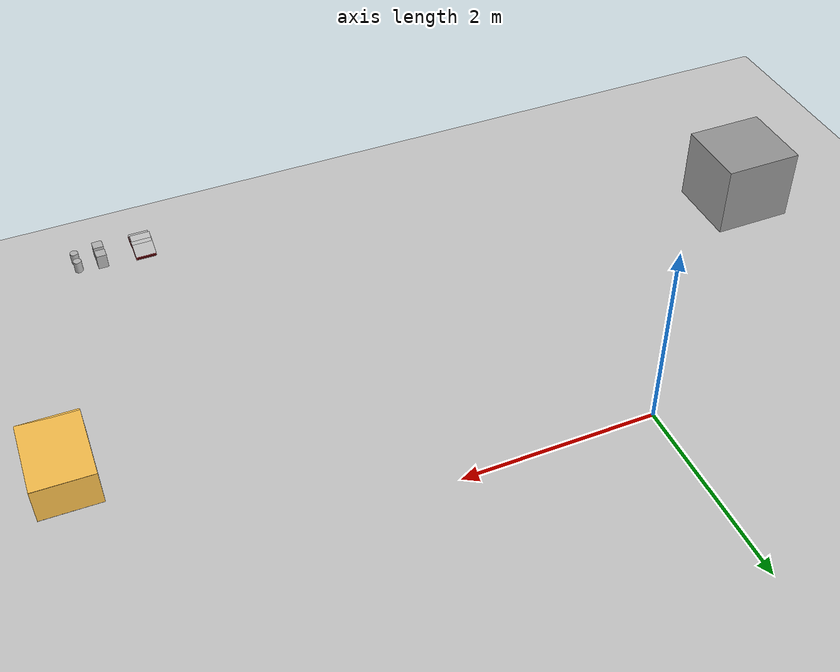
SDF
<sdf version="1.6">
 <world name="default">
  <model name="ground_plane">
   <static>1</static>
   <link name="link">
    <collision name="collision">
     <geometry><plane><normal>0 0 1</normal><size>100 100</size></plane></geometry>
     <surface><friction><ode><mu>100</mu><mu2>50</mu2></ode></friction></surface>
    </collision>
    <visual name="visual">
     <cast_shadows>0</cast_shadows>
     <geometry><plane><normal>0 0 1</normal><size>100 100</size></plane></geometry>
     <material>
      <script><uri>file://media/materials/scripts/gazebo.material</uri><name>Gazebo/Grey</name></script>
     </material>
    </visual>
   </link>
  </model>
  <model name="Fridge_Cabinet_33x15_clone_0">
   <link name="Wall_17">
    <pose>0 0 0.01 0 -0 0</pose>
    <inertial>
     <mass>4.8627</mass>
     <inertia><ixx>0.146</ixx><iyy>0.4318</iyy><izz>0.2861</izz><ixy>0</ixy><ixz>0</ixz><iyz>0</iyz></inertia>
    </inertial>
    <collision name="Wall_17_Collision"><geometry><box><size>0.84 0.6 0.02</size></box></geometry></collision>
    <visual name="Wall_17_Visual">
     <geometry><box><size>0.84 0.6 0.02</size></box></geometry>
     <material>
      <script><uri>file://media/materials/scripts/gazebo.material</uri><name>Gazebo/Grey</name></script>
      <ambient>1 0.764706 0.305882 1</ambient>
     </material>
    </visual>
   </link>
   <joint name="17_21" type="fixed">
    <pose>0.42 0 0 0 -0 0</pose>
    <parent>Wall_21</parent>
    <child>Wall_17</child>
    <axis>
     <xyz>1 0 0</xyz>
     <use_parent_model_frame>0</use_parent_model_frame>
     <limit><lower>-1e+16</lower><upper>1e+16</upper></limit>
    </axis>
   </joint>
   <joint name="17_19" type="fixed">
    <pose>-0.42 0 0 0 -0 0</pose>
    <parent>Wall_19</parent>
    <child>Wall_17</child>
    <axis>
     <xyz>1 0 0</xyz>
     <use_parent_model_frame>0</use_parent_model_frame>
     <limit><lower>-1e+16</lower><upper>1e+16</upper></limit>
    </axis>
   </joint>
   <joint name="17_25" type="fixed">
    <pose>0 -0.3 0 0 -0 0</pose>
    <parent>Wall_25</parent>
    <child>Wall_17</child>
    <axis>
     <xyz>0 1 0</xyz>
     <use_parent_model_frame>0</use_parent_model_frame>
     <limit><lower>-1e+16</lower><upper>1e+16</upper></limit>
    </axis>
   </joint>
   <link name="Wall_19">
    <pose>-0.41 0 0.192 0 -0 0</pose>
    <inertial>
     <mass>2.223</mass>
     <inertia><ixx>0.0668</ixx><iyy>0.094</iyy><izz>0.0274</izz><ixy>0</ixy><ixz>0</ixz><iyz>0</iyz></inertia>
    </inertial>
    <collision name="Wall_19_Collision"><geometry><box><size>0.02 0.6 0.384</size></box></geometry></collision>
    <visual name="Wall_19_Visual">
     <geometry><box><size>0.02 0.6 0.384</size></box></geometry>
     <material>
      <script><uri>file://media/materials/scripts/gazebo.material</uri><name>Gazebo/Grey</name></script>
      <ambient>1 0.764706 0.305882 1</ambient>
     </material>
    </visual>
   </link>
   <link name="Wall_21">
    <pose>0.41 0 0.192 0 -0 0</pose>
    <inertial>
     <mass>2.223</mass>
     <inertia><ixx>0.0668</ixx><iyy>0.094</iyy><izz>0.0274</izz><ixy>0</ixy><ixz>0</ixz><iyz>0</iyz></inertia>
    </inertial>
    <collision name="Wall_21_Collision"><geometry><box><size>0.02 0.6 0.384</size></box></geometry></collision>
    <visual name="Wall_21_Visual">
     <geometry><box><size>0.02 0.6 0.384</size></box></geometry>
     <material>
      <script><uri>file://media/materials/scripts/gazebo.material</uri><name>Gazebo/Grey</name></script>
      <ambient>1 0.764706 0.305882 1</ambient>
     </material>
    </visual>
   </link>
   <link name="Wall_23">
    <pose>0 0 0.374 0 -0 0</pose>
    <inertial>
     <mass>4.8627</mass>
     <inertia><ixx>0.146</ixx><iyy>0.4318</iyy><izz>0.2861</izz><ixy>0</ixy><ixz>0</ixz><iyz>0</iyz></inertia>
    </inertial>
    <collision name="Wall_23_Collision"><geometry><box><size>0.84 0.6 0.02</size></box></geometry></collision>
    <visual name="Wall_23_Visual">
     <geometry><box><size>0.84 0.6 0.02</size></box></geometry>
     <material>
      <script><uri>file://media/materials/scripts/gazebo.material</uri><name>Gazebo/Grey</name></script>
      <ambient>1 0.764706 0.305882 1</ambient>
     </material>
    </visual>
   </link>
   <joint name="23_21" type="fixed">
    <pose>0.42 0 0 0 -0 0</pose>
    <parent>Wall_21</parent>
    <child>Wall_23</child>
    <axis>
     <xyz>0 0 1</xyz>
     <use_parent_model_frame>0</use_parent_model_frame>
     <limit><lower>-1e+16</lower><upper>1e+16</upper></limit>
    </axis>
   </joint>
   <joint name="23_19" type="fixed">
    <pose>-0.42 0 0 0 -0 0</pose>
    <parent>Wall_19</parent>
    <child>Wall_23</child>
    <axis>
     <xyz>0 0 1</xyz>
     <use_parent_model_frame>0</use_parent_model_frame>
     <limit><lower>-1e+16</lower><upper>1e+16</upper></limit>
    </axis>
   </joint>
   <joint name="23_25" type="fixed">
    <pose>0 -0.3 0 0 -0 0</pose>
    <parent>Wall_25</parent>
    <child>Wall_23</child>
    <axis>
     <xyz>0 0 1</xyz>
     <use_parent_model_frame>0</use_parent_model_frame>
     <limit><lower>-1e+16</lower><upper>1e+16</upper></limit>
    </axis>
   </joint>
   <link name="Wall_25">
    <pose>0 -0.29 0.19 0 -0 0</pose>
    <inertial>
     <mass>3.0651</mass>
     <inertia><ixx>0.037</ixx><iyy>0.1786</iyy><izz>0.2154</izz><ixy>0</ixy><ixz>0</ixz><iyz>0</iyz></inertia>
    </inertial>
    <collision name="Wall_25_Collision"><geometry><box><size>0.836 0.02 0.38</size></box></geometry></collision>
    <visual name="Wall_25_Visual">
     <geometry><box><size>0.836 0.02 0.38</size></box></geometry>
     <material>
      <script><uri>file://media/materials/scripts/gazebo.material</uri><name>Gazebo/Grey</name></script>
      <ambient>1 0.764706 0.305882 1</ambient>
     </material>
    </visual>
   </link>
   <joint name="25_21" type="fixed">
    <pose>0.42 0 0 0 -0 0</pose>
    <parent>Wall_21</parent>
    <child>Wall_25</child>
    <axis>
     <xyz>0 1 0</xyz>
     <use_parent_model_frame>0</use_parent_model_frame>
     <limit><lower>-1e+16</lower><upper>1e+16</upper></limit>
    </axis>
   </joint>
   <joint name="25_19" type="fixed">
    <pose>-0.42 0 0 0 -0 0</pose>
    <parent>Wall_19</parent>
    <child>Wall_25</child>
    <axis>
     <xyz>0 1 0</xyz>
     <use_parent_model_frame>0</use_parent_model_frame>
     <limit><lower>-1e+16</lower><upper>1e+16</upper></limit>
    </axis>
   </joint>
   <static>1</static>
   <pose>5.31218 -1.44931 0 0 -0 1.5521</pose>
  </model>
  <model name="tea_box">
   <link name="link">
    <pose>0 0 0.075 0 -0 0</pose>
    <visual name="visual">
     <geometry><box><size>0.1 0.1 0.15</size></box></geometry>
     <material>
      <script>
       <uri>model://tea_box/materials/scripts</uri>
       <uri>model://tea_box/materials/textures</uri>
       <name>tea_pat</name>
      </script>
     </material>
    </visual>
    <collision name="collision"><geometry><box><size>0.1 0.1 0.15</size></box></geometry></collision>
   </link>
   <static>1</static>
   <pose>4.39901 -3.36741 0.726247 0 -0 0</pose>
  </model>
  <model name="biscuit_box">
   <link name="link">
    <pose>0 0 0.025 0 -0 0</pose>
    <visual name="visual">
     <geometry><box><size>0.2 0.15 0.05</size></box></geometry>
     <material>
      <ambient>0.423 0.019 0.035 1</ambient>
      <diffuse>0.423 0.019 0.035 1</diffuse>
      <specular>0.01 0.01 0.01 1</specular>
      <emissive>0 0 0 1</emissive>
     </material>
    </visual>
    <collision name="collision"><geometry><box><size>0.1 0.1 0.15</size></box></geometry></collision>
   </link>
   <link name="link_1">
    <pose>0 0 0.05 0 -0 0</pose>
    <visual name="visual">
     <geometry><box><size>0.2 0.15 0.001</size></box></geometry>
     <material>
      <script>
       <uri>model://biscuit_box/materials/scripts</uri>
       <uri>model://biscuit_box/materials/textures</uri>
       <name>biscuit_pat</name>
      </script>
     </material>
    </visual>
    <collision name="collision"><geometry><box><size>0.1 0.1 0.15</size></box></geometry></collision>
   </link>
   <static>1</static>
   <pose>3.97435 -3.59534 0.72147 0 -0 0</pose>
  </model>
  <model name="biscuit_box_clone">
   <link name="link">
    <pose>0 0 0.025 0 -0 0</pose>
    <visual name="visual">
     <geometry><box><size>0.2 0.15 0.05</size></box></geometry>
     <material>
      <ambient>0.423 0.019 0.035 1</ambient>
      <diffuse>0.423 0.019 0.035 1</diffuse>
      <specular>0.01 0.01 0.01 1</specular>
      <emissive>0 0 0 1</emissive>
     </material>
    </visual>
    <collision name="collision"><geometry><box><size>0.1 0.1 0.15</size></box></geometry></collision>
   </link>
   <link name="link_1">
    <pose>0 0 0.05 0 -0 0</pose>
    <visual name="visual">
     <geometry><box><size>0.2 0.15 0.001</size></box></geometry>
     <material>
      <script>
       <uri>model://biscuit_box/materials/scripts</uri>
       <uri>model://biscuit_box/materials/textures</uri>
       <name>biscuit_pat</name>
      </script>
     </material>
    </visual>
    <collision name="collision"><geometry><box><size>0.1 0.1 0.15</size></box></geometry></collision>
   </link>
   <static>1</static>
   <pose>3.98216 -3.31445 0.796009 -0.3533 0 0</pose>
  </model>
  <model name="biscuit_box_clone_clone">
   <link name="link">
    <pose>0 0 0.025 0 -0 0</pose>
    <visual name="visual">
     <geometry><box><size>0.2 0.15 0.05</size></box></geometry>
     <material>
      <ambient>0.423 0.019 0.035 1</ambient>
      <diffuse>0.423 0.019 0.035 1</diffuse>
      <specular>0.01 0.01 0.01 1</specular>
      <emissive>0 0 0 1</emissive>
     </material>
    </visual>
    <collision name="collision"><geometry><box><size>0.1 0.1 0.15</size></box></geometry></collision>
   </link>
   <link name="link_1">
    <pose>0 0 0.05 0 -0 0</pose>
    <visual name="visual">
     <geometry><box><size>0.2 0.15 0.001</size></box></geometry>
     <material>
      <script>
       <uri>model://biscuit_box/materials/scripts</uri>
       <uri>model://biscuit_box/materials/textures</uri>
       <name>biscuit_pat</name>
      </script>
     </material>
    </visual>
    <collision name="collision"><geometry><box><size>0.1 0.1 0.15</size></box></geometry></collision>
   </link>
   <static>1</static>
   <pose>3.97657 -3.42391 0.753893 -0.3533 0 0</pose>
  </model>
  <model name="biscuit_box_clone_clone_0">
   <link name="link">
    <pose>0 0 0.025 0 -0 0</pose>
    <visual name="visual">
     <geometry><box><size>0.2 0.15 0.05</size></box></geometry>
     <material>
      <ambient>0.423 0.019 0.035 1</ambient>
      <diffuse>0.423 0.019 0.035 1</diffuse>
      <specular>0.01 0.01 0.01 1</specular>
      <emissive>0 0 0 1</emissive>
     </material>
    </visual>
    <collision name="collision"><geometry><box><size>0.1 0.1 0.15</size></box></geometry></collision>
   </link>
   <link name="link_1">
    <pose>0 0 0.05 0 -0 0</pose>
    <visual name="visual">
     <geometry><box><size>0.2 0.15 0.001</size></box></geometry>
     <material>
      <script>
       <uri>model://biscuit_box/materials/scripts</uri>
       <uri>model://biscuit_box/materials/textures</uri>
       <name>biscuit_pat</name>
      </script>
     </material>
    </visual>
    <collision name="collision"><geometry><box><size>0.1 0.1 0.15</size></box></geometry></collision>
   </link>
   <static>1</static>
   <pose>3.9695 -3.52073 0.753893 -0.3533 0 0</pose>
  </model>
  <model name="coffee_box_0_clone">
   <link name="link_0">
    <visual name="visual">
     <pose>0 0 0.06 0 -0 0</pose>
     <geometry><cylinder><radius>0.04</radius><length>0.12</length></cylinder></geometry>
     <material>
      <script>
       <uri>model://coffee_box/materials/scripts</uri>
       <uri>model://coffee_box/materials/textures</uri>
       <name>coffee_pat</name>
      </script>
     </material>
    </visual>
    <collision name="collision">
     <geometry><cylinder><radius>0.04</radius><length>0.12</length></cylinder></geometry>
    </collision>
   </link>
   <static>1</static>
   <pose>4.63033 -3.37926 0.72131 0 -0 0</pose>
  </model>
  <model name="coffee_box_0_clone_0">
   <link name="link_0">
    <visual name="visual">
     <pose>0 0 0.06 0 -0 0</pose>
     <geometry><cylinder><radius>0.04</radius><length>0.12</length></cylinder></geometry>
     <material>
      <script>
       <uri>model://coffee_box/materials/scripts</uri>
       <uri>model://coffee_box/materials/textures</uri>
       <name>coffee_pat</name>
      </script>
     </material>
    </visual>
    <collision name="collision">
     <geometry><cylinder><radius>0.04</radius><length>0.12</length></cylinder></geometry>
    </collision>
   </link>
   <static>1</static>
   <pose>4.63634 -3.51363 0.72131 0 -0 0</pose>
  </model>
  <model name="tea_box_clone">
   <link name="link">
    <pose>0 0 0.075 0 -0 0</pose>
    <visual name="visual">
     <geometry><box><size>0.1 0.1 0.15</size></box></geometry>
     <material>
      <script>
       <uri>model://tea_box/materials/scripts</uri>
       <uri>model://tea_box/materials/textures</uri>
       <name>tea_pat</name>
      </script>
     </material>
    </visual>
    <collision name="collision"><geometry><box><size>0.1 0.1 0.15</size></box></geometry></collision>
   </link>
   <static>1</static>
   <pose>4.39878 -3.50791 0.726247 0 -0 0</pose>
  </model>
  <model name="unit_box_0_clone_0">
   <pose>-2.50358 -2.51172 0.40012 -1.15727 1.57079 1.98433</pose>
   <link name="link">
    <inertial>
     <mass>1</mass>
     <inertia>
      <ixx>0.166667</ixx>
      <ixy>0</ixy>
      <ixz>0</ixz>
      <iyy>0.166667</iyy>
      <iyz>0</iyz>
      <izz>0.166667</izz>
     </inertia>
    </inertial>
    <collision name="collision">
     <geometry><box><size>0.800249 0.809115 0.856223</size></box></geometry>
    </collision>
    <visual name="visual">
     <geometry><box><size>0.800249 0.809115 0.856223</size></box></geometry>
     <material>
      <script><name>Gazebo/Grey</name><uri>file://media/materials/scripts/gazebo.material</uri></script>
     </material>
    </visual>
   </link>
  </model>
 </world>
</sdf>
